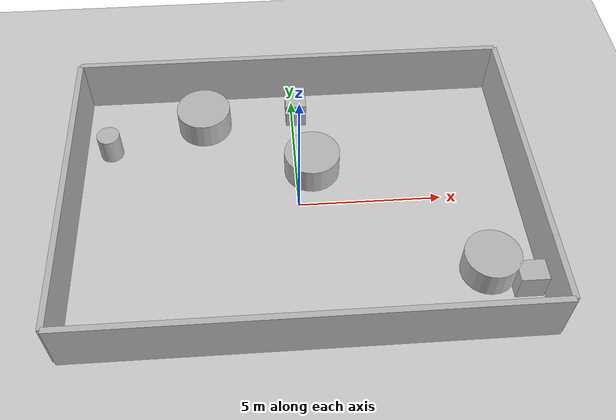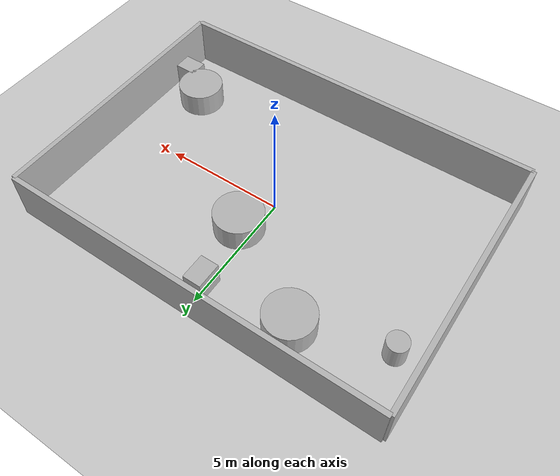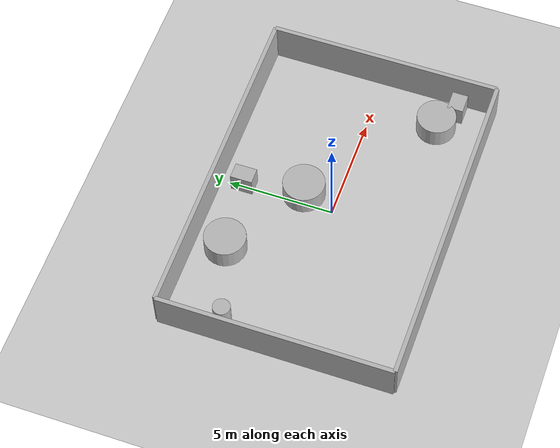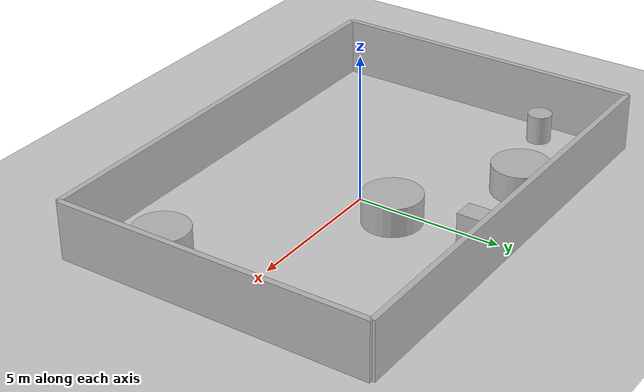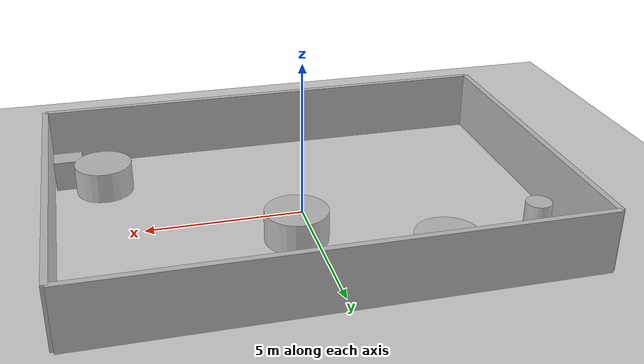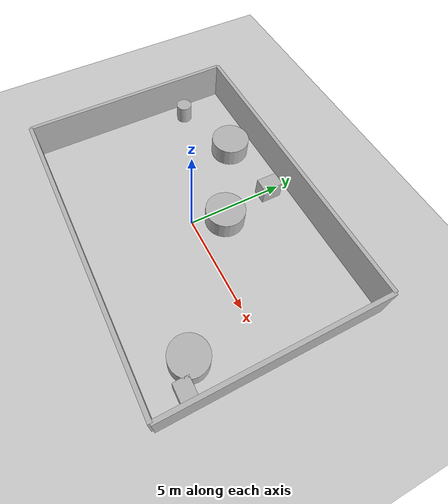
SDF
<?xml version="1.0"?>
<sdf version="1.6">
  <world name="env_20">

    <include><uri>model://ground_plane</uri></include>
    <include><uri>model://sun</uri></include>

    <!-- WALLS -->
    <model name="wall_north"><static>true</static><pose>0 5.487046386668438 1 0 0 0</pose>
      <link name="link"><collision name="collision">
        <geometry><box><size>15.512463441864334 0.2 2</size></box></geometry>
      </collision><visual name="visual">
        <geometry><box><size>15.512463441864334 0.2 2</size></box></geometry>
      </visual></link>
    </model>

    <model name="wall_south"><static>true</static><pose>0 -5.487046386668438 1 0 0 0</pose>
      <link name="link"><collision name="collision">
        <geometry><box><size>15.512463441864334 0.2 2</size></box></geometry>
      </collision><visual name="visual">
        <geometry><box><size>15.512463441864334 0.2 2</size></box></geometry>
      </visual></link>
    </model>

    <model name="wall_east"><static>true</static><pose>7.756231720932167 0 1 0 0 1.57</pose>
      <link name="link"><collision name="collision">
        <geometry><box><size>10.974092773336876 0.2 2</size></box></geometry>
      </collision><visual name="visual">
        <geometry><box><size>10.974092773336876 0.2 2</size></box></geometry>
      </visual></link>
    </model>

    <model name="wall_west"><static>true</static><pose>-7.756231720932167 0 1 0 0 1.57</pose>
      <link name="link"><collision name="collision">
        <geometry><box><size>10.974092773336876 0.2 2</size></box></geometry>
      </collision><visual name="visual">
        <geometry><box><size>10.974092773336876 0.2 2</size></box></geometry>
      </visual></link>
    </model>

    <!-- SENSOR -->

    <model name="lidar_sensor">
      <static>true</static>
      <pose>-2.670356647323496 -0.987907477768331 0.4 0 0 0</pose>
      <link name="link">
        <sensor name="lidar" type="ray">
          <pose>0 0 0 0 0 0</pose>
          <visualize>true</visualize>
          <always_on>true</always_on>
          <update_rate>10</update_rate>
          <ray>
            <scan><horizontal>
              <samples>720</samples>
              <resolution>1</resolution>
              <min_angle>-3.14159</min_angle>
              <max_angle>3.14159</max_angle>
            </horizontal></scan>
            <range><min>0.15</min><max>20.0</max><resolution>0.01</resolution></range>
          </ray>
          <plugin name="lidar_plugin" filename="liblidar_plugin.so"/>
        </sensor>
      </link>
    </model>

    <!-- OBSTACLES -->

    <model name="obstacle_0">
      <static>true</static>
      <pose>-6.723459817802148 2.831241199796035 0.5 0 0 0</pose>
      <link name="link">
        <collision name="collision">
          <geometry><cylinder><radius>0.41</radius><length>1.0</length></cylinder></geometry>
        </collision>
        <visual name="visual">
          <geometry><cylinder><radius>0.41</radius><length>1.0</length></cylinder></geometry>
        </visual>
      </link>
    </model>

    <model name="obstacle_1">
      <static>true</static>
      <pose>6.017212631200959 -3.119755521674649 0.5 0 0 0</pose>
      <link name="link">
        <collision name="collision">
          <geometry><cylinder><radius>0.93</radius><length>1.0</length></cylinder></geometry>
        </collision>
        <visual name="visual">
          <geometry><cylinder><radius>0.93</radius><length>1.0</length></cylinder></geometry>
        </visual>
      </link>
    </model>

    <model name="obstacle_2">
      <static>true</static>
      <pose>7.136340196333244 -3.814769671809258 0.5 0 0 0</pose>
      <link name="link">
        <collision name="collision">
          <geometry><box><size>0.93 0.75 1.0</size></box></geometry>
        </collision>
        <visual name="visual">
          <geometry><box><size>0.93 0.75 1.0</size></box></geometry>
        </visual>
      </link>
    </model>

    <model name="obstacle_3">
      <static>true</static>
      <pose>0.5598850942471785 1.551969155229477 0.5 0 0 0</pose>
      <link name="link">
        <collision name="collision">
          <geometry><cylinder><radius>0.99</radius><length>1.0</length></cylinder></geometry>
        </collision>
        <visual name="visual">
          <geometry><cylinder><radius>0.99</radius><length>1.0</length></cylinder></geometry>
        </visual>
      </link>
    </model>

    <model name="obstacle_4">
      <static>true</static>
      <pose>-3.301759599685538 3.9582676248034376 0.5 0 0 0</pose>
      <link name="link">
        <collision name="collision">
          <geometry><cylinder><radius>0.98</radius><length>1.0</length></cylinder></geometry>
        </collision>
        <visual name="visual">
          <geometry><cylinder><radius>0.98</radius><length>1.0</length></cylinder></geometry>
        </visual>
      </link>
    </model>

    <model name="obstacle_5">
      <static>true</static>
      <pose>0.13144592209911732 4.3320060514327325 0.5 0 0 0</pose>
      <link name="link">
        <collision name="collision">
          <geometry><box><size>0.75 1.04 1.0</size></box></geometry>
        </collision>
        <visual name="visual">
          <geometry><box><size>0.75 1.04 1.0</size></box></geometry>
        </visual>
      </link>
    </model>

  </world>
</sdf>
